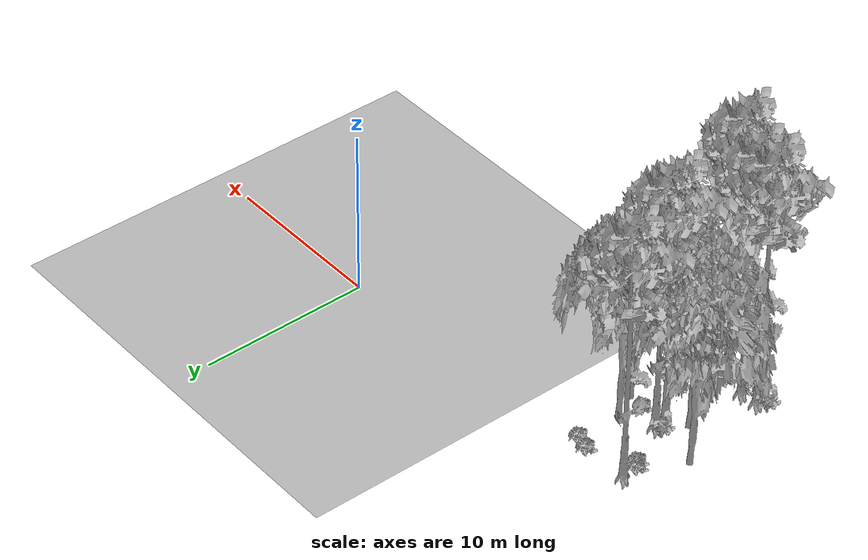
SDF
<sdf version="1.7">
 <world name="default">
  <model name="ground_plane">
   <static>1</static>
   <link name="link">
    <collision name="collision">
     <pose>-50 0 0 0 -0 0</pose>
     <geometry><plane><normal>0 0 1</normal><size>80 80</size></plane></geometry>
     <surface><contact><ode><min_depth>0.01</min_depth><max_vel>0</max_vel></ode></contact></surface>
    </collision>
    <visual name="grass">
     <cast_shadows>0</cast_shadows>
     <geometry>
      <mesh>
       <scale>0.46714285714285714 0.46714285714285714 0.1</scale>
       <uri>file://grass_plane/meshes/grass_plane.dae</uri>
      </mesh>
     </geometry>
    </visual>
   </link>
  </model>
  <model name="Tree 0">
   <static>1</static>
   <pose>-21.365664660761375 -4.4400965964897665 0 1.57079 -0 0</pose>
   <link name="link">
    <collision name="collision">
     <geometry><mesh><scale>3.5 5 3.5</scale><uri>model://tree_2/meshes/tree_2.obj</uri></mesh></geometry>
    </collision>
    <visual name="visual">
     <geometry><mesh><scale>3.5 5 3.5</scale><uri>model://tree_2/meshes/tree_2.obj</uri></mesh></geometry>
    </visual>
   </link>
  </model>
  <model name="Tree 72">
   <static>1</static>
   <pose>-19.946774163332563 -10.279405365638333 0 1.57079 -0 0</pose>
   <link name="link">
    <collision name="collision">
     <geometry><mesh><scale>3.5 5 3.5</scale><uri>model://tree_9/meshes/tree_9.obj</uri></mesh></geometry>
    </collision>
    <visual name="visual">
     <geometry><mesh><scale>3.5 5 3.5</scale><uri>model://tree_9/meshes/tree_9.obj</uri></mesh></geometry>
    </visual>
   </link>
  </model>
  <model name="Tree 147">
   <static>1</static>
   <pose>-16.342857853046812 -11.749639355037608 0 1.57079 -0 0</pose>
   <link name="link">
    <collision name="collision">
     <geometry><mesh><scale>3.5 5 3.5</scale><uri>model://tree_9/meshes/tree_9.obj</uri></mesh></geometry>
    </collision>
    <visual name="visual">
     <geometry><mesh><scale>3.5 5 3.5</scale><uri>model://tree_9/meshes/tree_9.obj</uri></mesh></geometry>
    </visual>
   </link>
  </model>
  <model name="Tree 150">
   <static>1</static>
   <pose>-15.743719346767818 -5.455432364831381 0 1.57079 -0 0</pose>
   <link name="link">
    <collision name="collision">
     <geometry><mesh><scale>3.5 5 3.5</scale><uri>model://tree_2/meshes/tree_2.obj</uri></mesh></geometry>
    </collision>
    <visual name="visual">
     <geometry><mesh><scale>3.5 5 3.5</scale><uri>model://tree_2/meshes/tree_2.obj</uri></mesh></geometry>
    </visual>
   </link>
  </model>
  <model name="Tree 155">
   <static>1</static>
   <pose>-16.504125356567393 -3.9648344906136757 0 1.57079 -0 0</pose>
   <link name="link">
    <collision name="collision">
     <geometry><mesh><scale>3.5 5 3.5</scale><uri>model://tree_2/meshes/tree_2.obj</uri></mesh></geometry>
    </collision>
    <visual name="visual">
     <geometry><mesh><scale>3.5 5 3.5</scale><uri>model://tree_2/meshes/tree_2.obj</uri></mesh></geometry>
    </visual>
   </link>
  </model>
  <model name="Tree 187">
   <static>1</static>
   <pose>-17.962293660034096 -5.7490020337842935 0 1.57079 -0 0</pose>
   <link name="link">
    <collision name="collision">
     <geometry><mesh><scale>3.5 5 3.5</scale><uri>model://tree_9/meshes/tree_9.obj</uri></mesh></geometry>
    </collision>
    <visual name="visual">
     <geometry><mesh><scale>3.5 5 3.5</scale><uri>model://tree_9/meshes/tree_9.obj</uri></mesh></geometry>
    </visual>
   </link>
  </model>
  <model name="Tree 260">
   <static>1</static>
   <pose>-19.779449198694294 -1.2648777653024652 0 1.57079 -0 0</pose>
   <link name="link">
    <collision name="collision">
     <geometry><mesh><scale>3.5 5 3.5</scale><uri>model://tree_9/meshes/tree_9.obj</uri></mesh></geometry>
    </collision>
    <visual name="visual">
     <geometry><mesh><scale>3.5 5 3.5</scale><uri>model://tree_9/meshes/tree_9.obj</uri></mesh></geometry>
    </visual>
   </link>
  </model>
  <model name="Tree 302">
   <static>1</static>
   <pose>-18.00078156158743 -5.032634717248321 0 1.57079 -0 0</pose>
   <link name="link">
    <collision name="collision">
     <geometry><mesh><scale>3.5 5 3.5</scale><uri>model://tree_9/meshes/tree_9.obj</uri></mesh></geometry>
    </collision>
    <visual name="visual">
     <geometry><mesh><scale>3.5 5 3.5</scale><uri>model://tree_9/meshes/tree_9.obj</uri></mesh></geometry>
    </visual>
   </link>
  </model>
  <model name="Tree 550">
   <static>1</static>
   <pose>-19.31425172663268 -6.270872088978301 0 1.57079 -0 0</pose>
   <link name="link">
    <collision name="collision">
     <geometry><mesh><scale>3.5 5 3.5</scale><uri>model://tree_2/meshes/tree_2.obj</uri></mesh></geometry>
    </collision>
    <visual name="visual">
     <geometry><mesh><scale>3.5 5 3.5</scale><uri>model://tree_2/meshes/tree_2.obj</uri></mesh></geometry>
    </visual>
   </link>
  </model>
  <model name="Tree 620">
   <static>1</static>
   <pose>-18.88120931062482 -10.205426422141805 0 1.57079 -0 0</pose>
   <link name="link">
    <collision name="collision">
     <geometry><mesh><scale>3.5 5 3.5</scale><uri>model://tree_9/meshes/tree_9.obj</uri></mesh></geometry>
    </collision>
    <visual name="visual">
     <geometry><mesh><scale>3.5 5 3.5</scale><uri>model://tree_9/meshes/tree_9.obj</uri></mesh></geometry>
    </visual>
   </link>
  </model>
  <model name="Bush 60">
   <static>1</static>
   <pose>-17.76957299616204 -10.218895165978523 0 1.57079 -0 0</pose>
   <link name="link">
    <collision name="collision">
     <geometry><mesh><scale>2 2 2</scale><uri>model://bush_2/meshes/bush_2.obj</uri></mesh></geometry>
     <surface><contact><collide_without_contact>false</collide_without_contact></contact></surface>
    </collision>
    <visual name="visual">
     <geometry><mesh><scale>2 2 2</scale><uri>model://bush_2/meshes/bush_2.obj</uri></mesh></geometry>
    </visual>
   </link>
  </model>
  <model name="Bush 159">
   <static>1</static>
   <pose>-16.657937380064133 -5.434406688846977 0 1.57079 -0 0</pose>
   <link name="link">
    <collision name="collision">
     <geometry><mesh><scale>2 2 2</scale><uri>model://bush_2/meshes/bush_2.obj</uri></mesh></geometry>
     <surface><contact><collide_without_contact>false</collide_without_contact></contact></surface>
    </collision>
    <visual name="visual">
     <geometry><mesh><scale>2 2 2</scale><uri>model://bush_2/meshes/bush_2.obj</uri></mesh></geometry>
    </visual>
   </link>
  </model>
  <model name="Bush 193">
   <static>1</static>
   <pose>-16.283804132950664 -1.434848797856496 0 1.57079 -0 0</pose>
   <link name="link">
    <collision name="collision">
     <geometry><mesh><scale>2 2 2</scale><uri>model://bush_2/meshes/bush_2.obj</uri></mesh></geometry>
     <surface><contact><collide_without_contact>false</collide_without_contact></contact></surface>
    </collision>
    <visual name="visual">
     <geometry><mesh><scale>2 2 2</scale><uri>model://bush_2/meshes/bush_2.obj</uri></mesh></geometry>
    </visual>
   </link>
  </model>
  <model name="Bush 248">
   <static>1</static>
   <pose>-19.84411093011372 -2.1903474671341954 0 1.57079 -0 0</pose>
   <link name="link">
    <collision name="collision">
     <geometry><mesh><scale>2 2 2</scale><uri>model://bush_2/meshes/bush_2.obj</uri></mesh></geometry>
     <surface><contact><collide_without_contact>false</collide_without_contact></contact></surface>
    </collision>
    <visual name="visual">
     <geometry><mesh><scale>2 2 2</scale><uri>model://bush_2/meshes/bush_2.obj</uri></mesh></geometry>
    </visual>
   </link>
  </model>
  <model name="Bush 265">
   <static>1</static>
   <pose>-15.54498607410462 -8.072352233465931 0 1.57079 -0 0</pose>
   <link name="link">
    <collision name="collision">
     <geometry><mesh><scale>2 2 2</scale><uri>model://bush_2/meshes/bush_2.obj</uri></mesh></geometry>
     <surface><contact><collide_without_contact>false</collide_without_contact></contact></surface>
    </collision>
    <visual name="visual">
     <geometry><mesh><scale>2 2 2</scale><uri>model://bush_2/meshes/bush_2.obj</uri></mesh></geometry>
    </visual>
   </link>
  </model>
  <model name="Bush 282">
   <static>1</static>
   <pose>-17.159260436960174 -1.1545801068964678 0 1.57079 -0 0</pose>
   <link name="link">
    <collision name="collision">
     <geometry><mesh><scale>2 2 2</scale><uri>model://bush_2/meshes/bush_2.obj</uri></mesh></geometry>
     <surface><contact><collide_without_contact>false</collide_without_contact></contact></surface>
    </collision>
    <visual name="visual">
     <geometry><mesh><scale>2 2 2</scale><uri>model://bush_2/meshes/bush_2.obj</uri></mesh></geometry>
    </visual>
   </link>
  </model>
  <model name="Bush 328">
   <static>1</static>
   <pose>-18.36059413681063 -5.256239571228711 0 1.57079 -0 0</pose>
   <link name="link">
    <collision name="collision">
     <geometry><mesh><scale>2 2 2</scale><uri>model://bush_2/meshes/bush_2.obj</uri></mesh></geometry>
     <surface><contact><collide_without_contact>false</collide_without_contact></contact></surface>
    </collision>
    <visual name="visual">
     <geometry><mesh><scale>2 2 2</scale><uri>model://bush_2/meshes/bush_2.obj</uri></mesh></geometry>
    </visual>
   </link>
  </model>
  <model name="Bush 355">
   <static>1</static>
   <pose>-17.14965188034826 -7.404130857761125 0 1.57079 -0 0</pose>
   <link name="link">
    <collision name="collision">
     <geometry><mesh><scale>2 2 2</scale><uri>model://bush_0/meshes/bush_0.obj</uri></mesh></geometry>
     <surface><contact><collide_without_contact>false</collide_without_contact></contact></surface>
    </collision>
    <visual name="visual">
     <geometry><mesh><scale>2 2 2</scale><uri>model://bush_0/meshes/bush_0.obj</uri></mesh></geometry>
    </visual>
   </link>
  </model>
  <model name="Bush 389">
   <static>1</static>
   <pose>-19.645055243099115 -10.432159176340292 0 1.57079 -0 0</pose>
   <link name="link">
    <collision name="collision">
     <geometry><mesh><scale>2 2 2</scale><uri>model://bush_4/meshes/bush_4.obj</uri></mesh></geometry>
     <surface><contact><collide_without_contact>false</collide_without_contact></contact></surface>
    </collision>
    <visual name="visual">
     <geometry><mesh><scale>2 2 2</scale><uri>model://bush_4/meshes/bush_4.obj</uri></mesh></geometry>
    </visual>
   </link>
  </model>
  <model name="Bush 440">
   <static>1</static>
   <pose>-19.558885453747717 -2.502468466208285 0 1.57079 -0 0</pose>
   <link name="link">
    <collision name="collision">
     <geometry><mesh><scale>2 2 2</scale><uri>model://bush_2/meshes/bush_2.obj</uri></mesh></geometry>
     <surface><contact><collide_without_contact>false</collide_without_contact></contact></surface>
    </collision>
    <visual name="visual">
     <geometry><mesh><scale>2 2 2</scale><uri>model://bush_2/meshes/bush_2.obj</uri></mesh></geometry>
    </visual>
   </link>
  </model>
  <model name="Bush 475">
   <static>1</static>
   <pose>-18.97148809169588 -4.560472024856324 0 1.57079 -0 0</pose>
   <link name="link">
    <collision name="collision">
     <geometry><mesh><scale>2 2 2</scale><uri>model://bush_0/meshes/bush_0.obj</uri></mesh></geometry>
     <surface><contact><collide_without_contact>false</collide_without_contact></contact></surface>
    </collision>
    <visual name="visual">
     <geometry><mesh><scale>2 2 2</scale><uri>model://bush_0/meshes/bush_0.obj</uri></mesh></geometry>
    </visual>
   </link>
  </model>
  <model name="Bush 602">
   <static>1</static>
   <pose>-17.490474961091227 -10.759740421311328 0 1.57079 -0 0</pose>
   <link name="link">
    <collision name="collision">
     <geometry><mesh><scale>2 2 2</scale><uri>model://bush_2/meshes/bush_2.obj</uri></mesh></geometry>
     <surface><contact><collide_without_contact>false</collide_without_contact></contact></surface>
    </collision>
    <visual name="visual">
     <geometry><mesh><scale>2 2 2</scale><uri>model://bush_2/meshes/bush_2.obj</uri></mesh></geometry>
    </visual>
   </link>
  </model>
  <model name="Bush 633">
   <static>1</static>
   <pose>-20.91535905368499 -10.06710486583005 0 1.57079 -0 0</pose>
   <link name="link">
    <collision name="collision">
     <geometry><mesh><scale>2 2 2</scale><uri>model://bush_0/meshes/bush_0.obj</uri></mesh></geometry>
     <surface><contact><collide_without_contact>false</collide_without_contact></contact></surface>
    </collision>
    <visual name="visual">
     <geometry><mesh><scale>2 2 2</scale><uri>model://bush_0/meshes/bush_0.obj</uri></mesh></geometry>
    </visual>
   </link>
  </model>
 </world>
</sdf>
